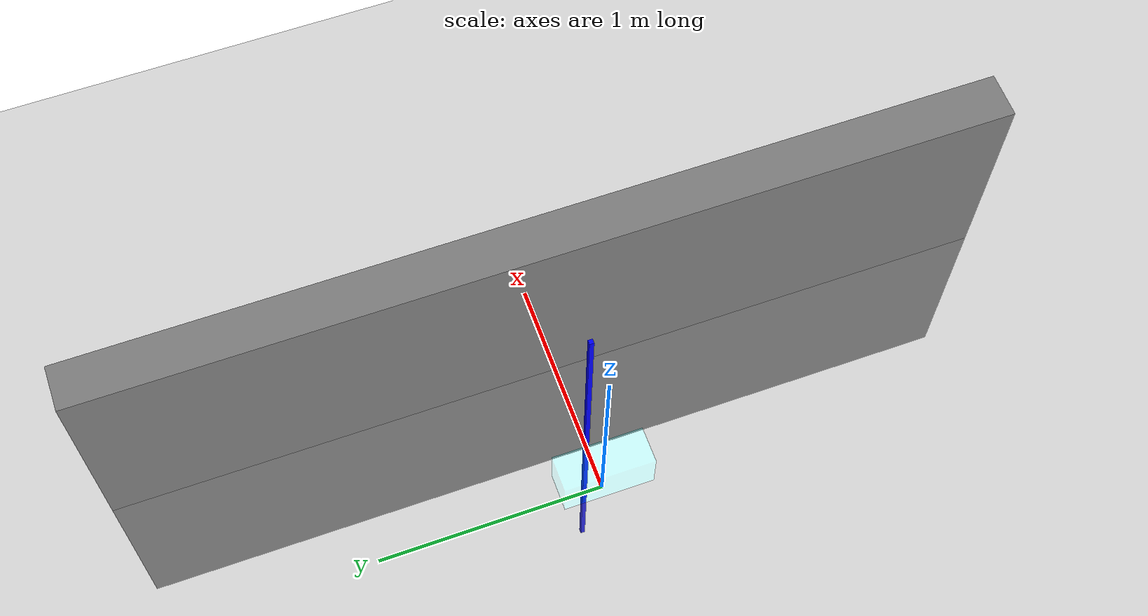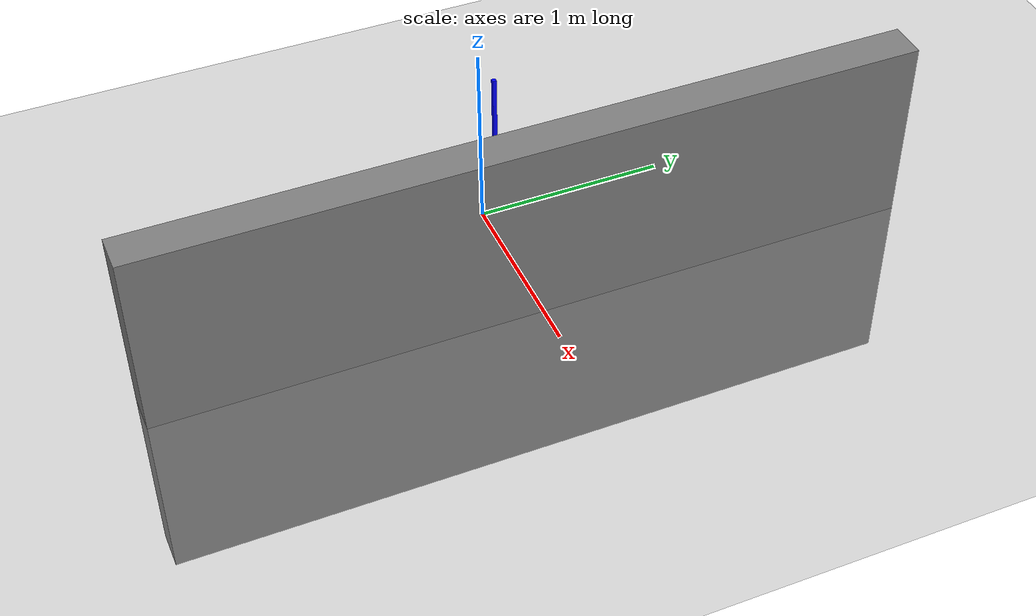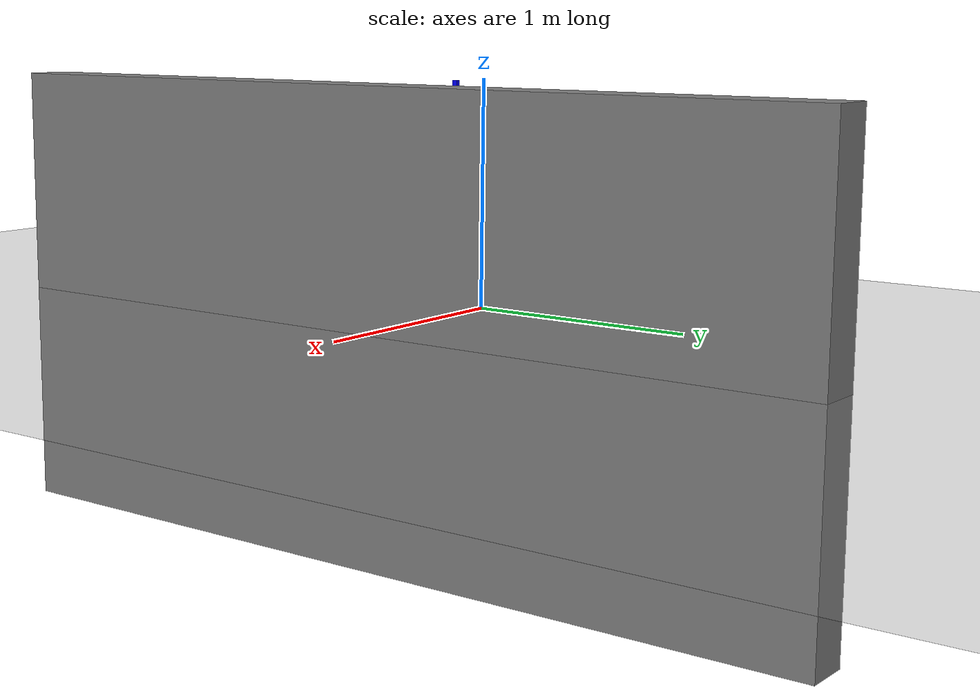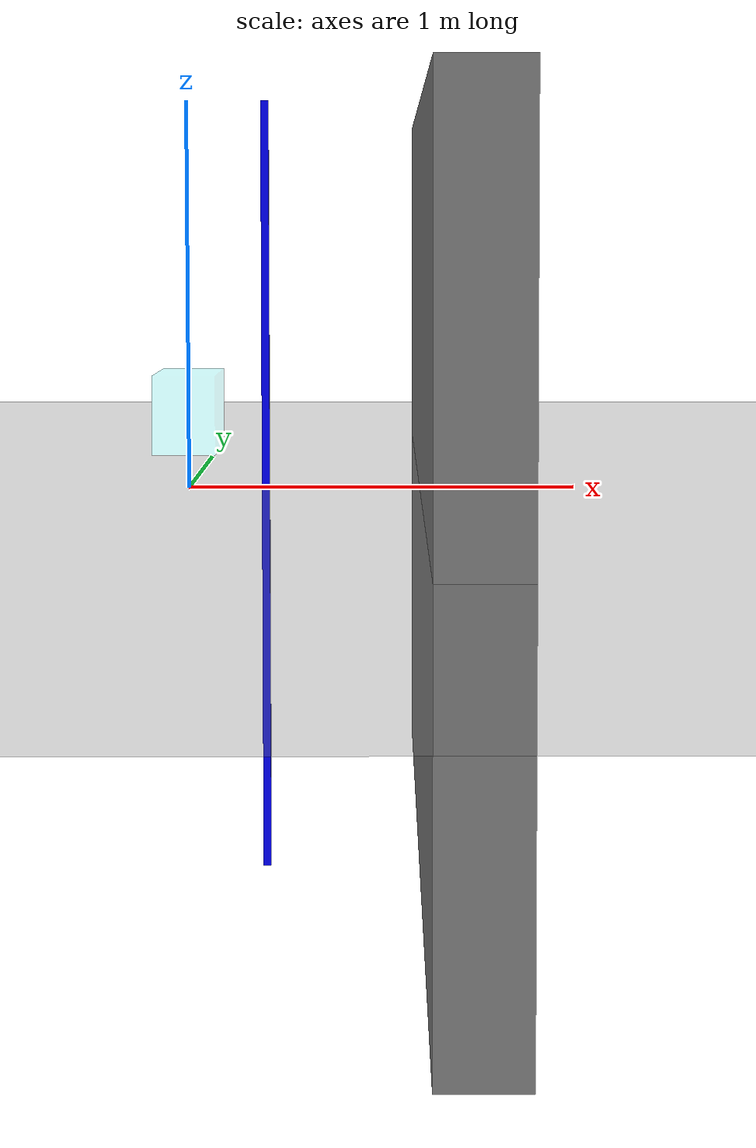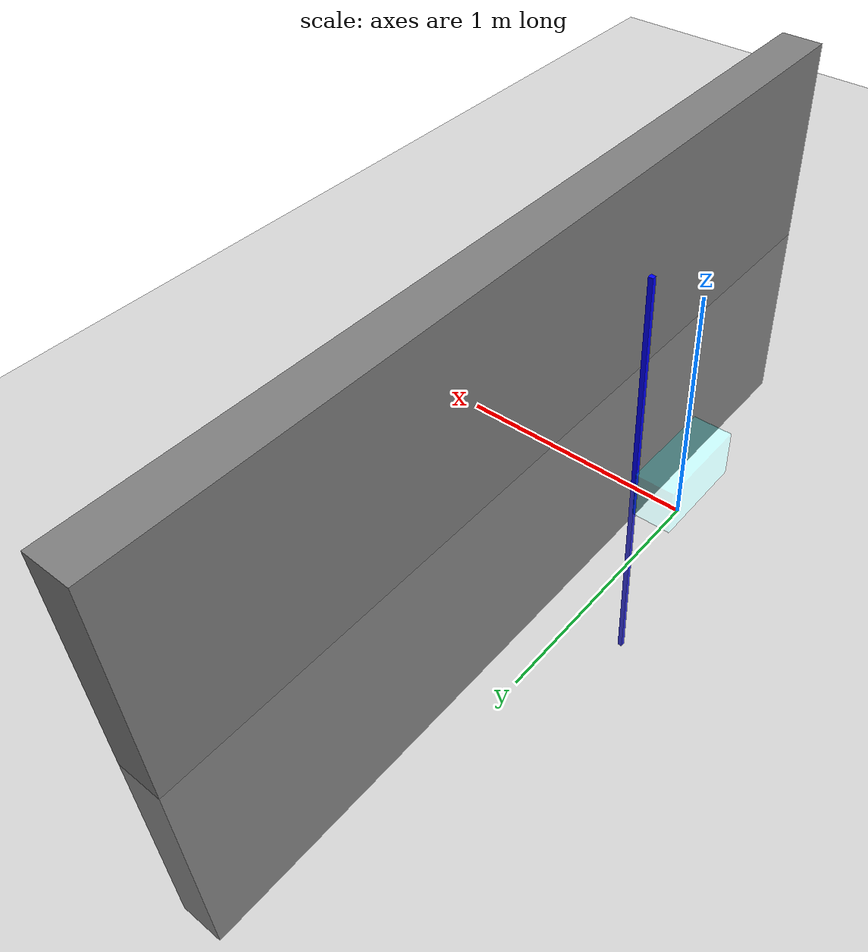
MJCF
<mujoco model="ray_caster_test">
  <include file="scene.xml" />
  <compiler autolimits="true" />
  <option timestep="0.002" />

  <extension>
    <plugin plugin="mujoco.sensor.ray_caster_camera" />
  </extension>
  <asset>

  </asset>

  <visual>
    <headlight ambient=".7 .7 .7" diffuse=".2 .2 .2" specular="0.1 0.1 0.1" />
    <map znear="0.01" />
  </visual>

  <worldbody>

    <body pos="0 0 0.2" mocap="true">
      <geom type="box" size="0.08 0.2 0.1" rgba="0 1 1 0.2" />
      <camera name="RayCasterCamera" ipd="0.095" focal="1 1"
        sensorsize="2.0 1.1547005"
        resolution="4 4" xyaxes="0 -1 0 0 0 1" />
    </body>

    <geom type="box" pos="0.7 0 0" size="0.1 2 1" />
    <body mocap="true">
      <geom type="box" pos="0.2 0 0" size="0.01 0.01 1" rgba="0 0 1 1" />
    </body>

  </worldbody>

  <sensor>

    <plugin name="raycastercamera" plugin="mujoco.sensor.ray_caster_camera" objtype="camera"
      objname="RayCasterCamera">
      <config key="focal_length" value="1" />
      <config key="horizontal_aperture" value="2" />
      <config key="vertical_aperture" value="1.154700538" />
      <config key="size" value="64 32" />
      <config key="dis_range" value="0.01 10" />

      <config key="draw_hip_point" value="1 0.02" />

      <config key="sensor_data_types" value="image_plane_image data" />
      <config key="baseline" value="0.095" />
      <config key="num_thread" value="4" />
    </plugin>

  </sensor>

</mujoco>

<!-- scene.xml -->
<mujoco>
  <statistic center="0 0 1" extent="2.5" />
  <asset>
    <texture name="plane" type="2d" builtin="checker" rgb1=".1 .1 .1" rgb2=".9 .9 .9"
      width="512" height="512" mark="cross" markrgb=".8 .8 .8" />
    <material name="plane" reflectance="0.3" texture="plane" texrepeat="1 1" texuniform="true" />
  </asset>

  <worldbody>
    <light pos="0 0 1.5" dir="0 0 -1" directional="true" />
    <geom name="floor" size="0 0 0.05" type="plane" material="plane" />
  </worldbody>
</mujoco>
